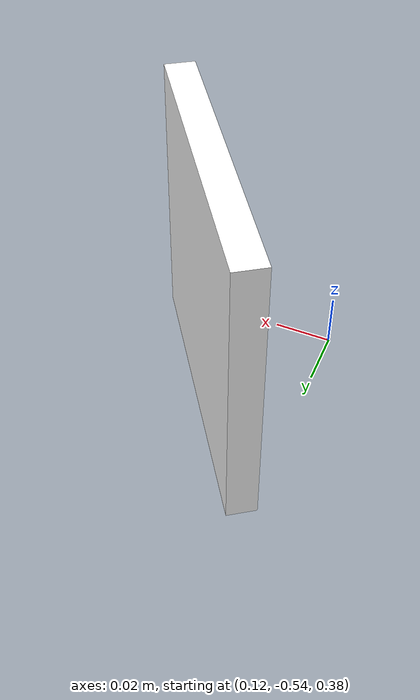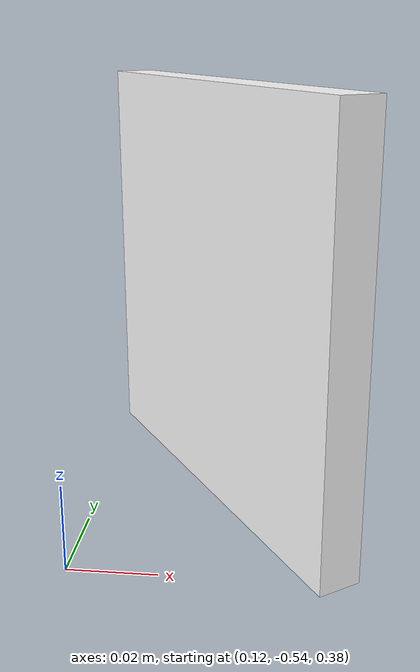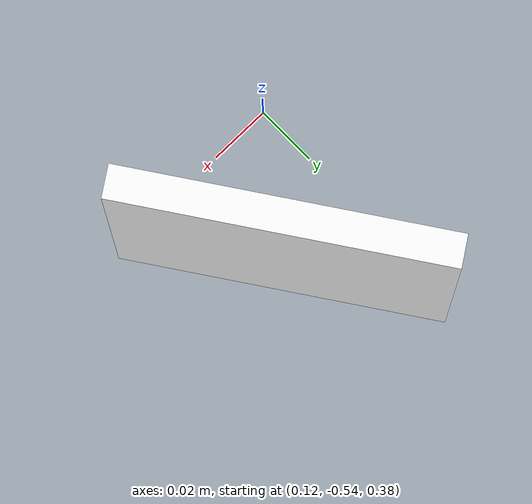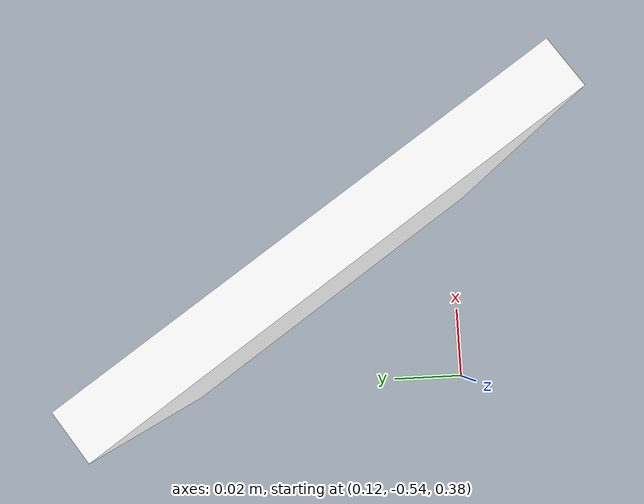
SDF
<?xml version="1.0" ?>
<sdf version="1.9">
  <world name="aruco_world">

    <!-- Included model -->
    <include>
      <uri>https://fuel.gazebosim.org/1.0/OpenRobotics/models/Ground Plane</uri>
    </include>

     <!-- Included light -->
    <include>
      <uri>https://fuel.gazebosim.org/1.0/OpenRobotics/models/Sun</uri>
    </include>

    <!-- Include ArUco marker -->
    <include>
      <uri>model://aruco_tag</uri>
      <pose>0.15 -0.5 0.43 2.54 1.57 3.14</pose> <!-- x y z roll pitch yaw,-->
    </include>

  </world>
</sdf>

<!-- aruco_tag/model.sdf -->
<sdf version='1.9'>
  <model name='aruco_tag'>
    <static>true</static>
    <pose>0.25 -0.43 0.43 2.54 1.57 3.14</pose>
    <link name='base'>
      <visual name='base_visual'>
        <geometry>
          <box>
            <size>0.1 0.1 0.01</size>
          </box>
        </geometry>
        <material>
          <diffuse>1 1 1 1</diffuse>
          <specular>0.4 0.4 0.4 1</specular>
          <pbr>
            <metal>
              <albedo_map>aruco-20.png</albedo_map>
            </metal>
          </pbr>
        </material>
      </visual>
    </link>
  </model>
</sdf>
